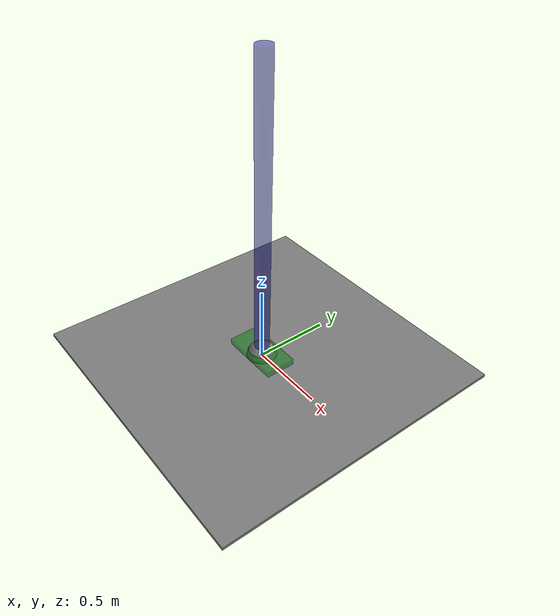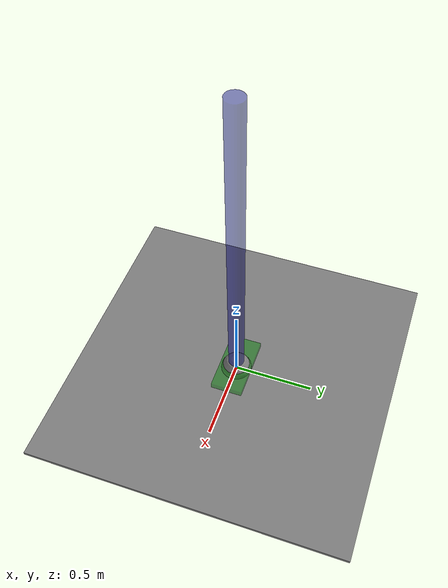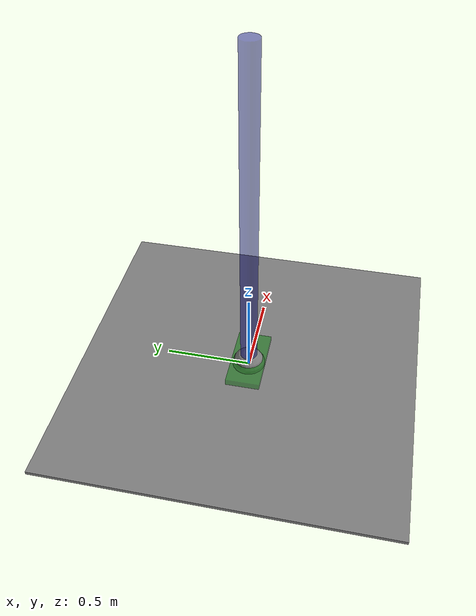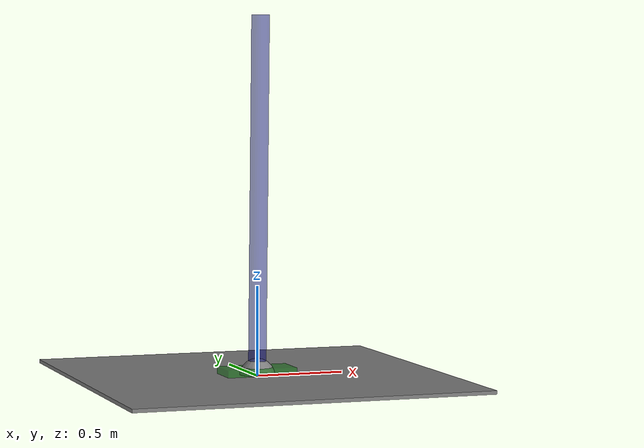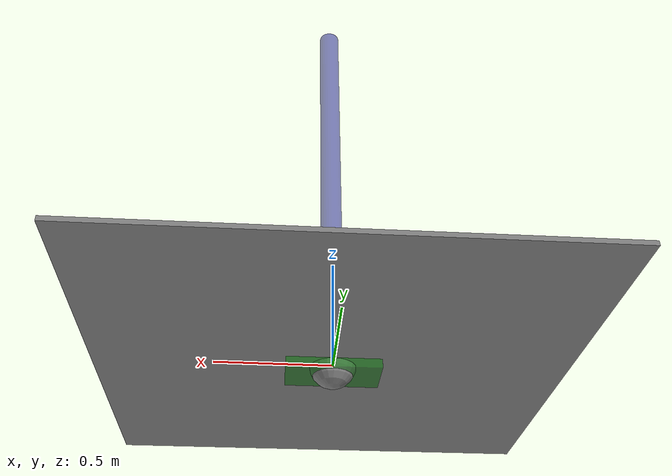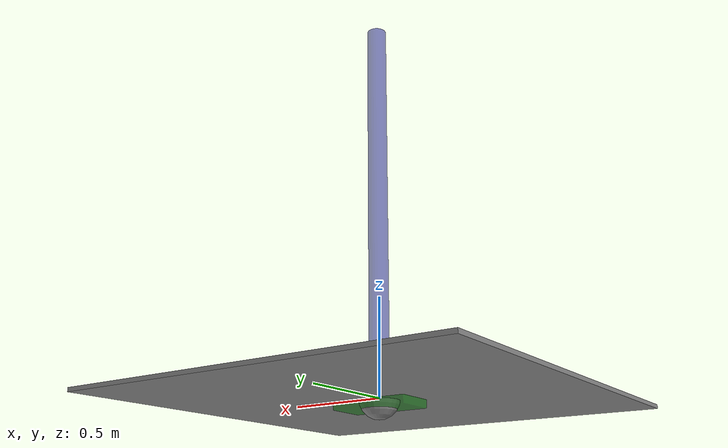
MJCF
<mujoco>
    <compiler angle="radian"/>

    <visual>
        <scale framelength="0.5" framewidth="0.02"/>
    </visual>

   <worldbody>
      <light diffuse=".5 .5 .5" pos="0 0 3" dir="0 0 -1"/>
      <site type="box" size="1 1 0.01" rgba=".5 .5 .5 1"/>

      <body name="cart" pos="0 0 0" euler="0 0 0">
        <joint name="cart_slide" type="slide" axis="1 0 0"/>
        <geom type="box" size=".2 .1 .05" rgba="0 .5 0 0.5"/>
        <site name="cart_force_location" type="sphere" size="0.1" pos="0 0 0"/>

        <body name="pendulum" pos="0 0 0" euler="0 0.01 0">
        <joint name="pendulum_rotation" type="hinge" axis="0 1 0"/>
        <geom type="cylinder" size="0.05 1" pos="0 0 1" rgba="0 0 0.5 0.5" />
        </body>
    </body>

   </worldbody>

    <actuator>
        <position name="cart_actuator" site="cart_force_location" gear="1 1 1 0 0 0"/>
    </actuator>

    <sensor>
        <jointpos name="cart_slide_sensor" joint="cart_slide"/>
        <jointpos name="pendulum_rotation_sensor" joint="pendulum_rotation"/>
    </sensor>

</mujoco>
